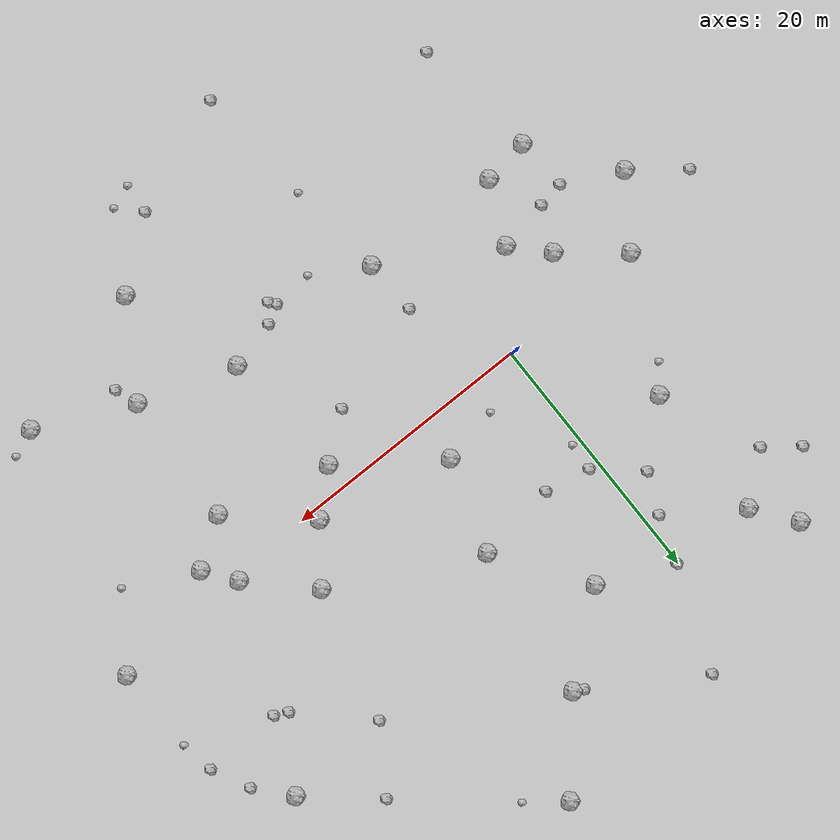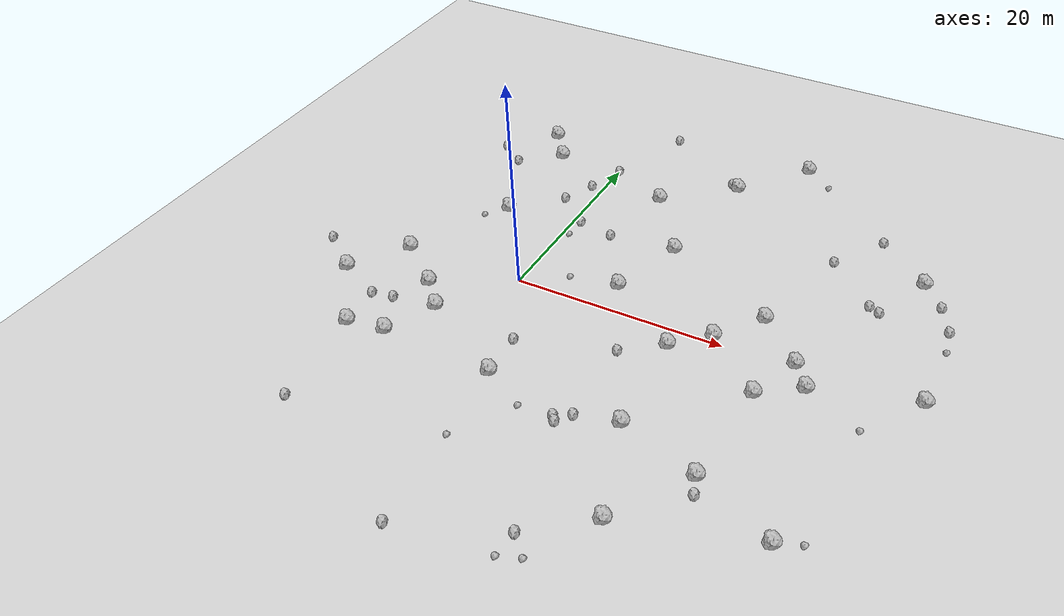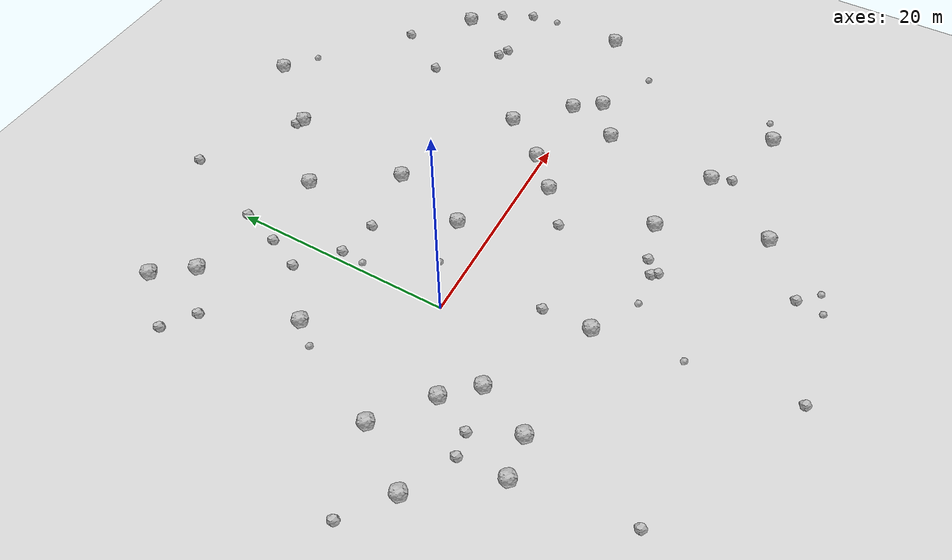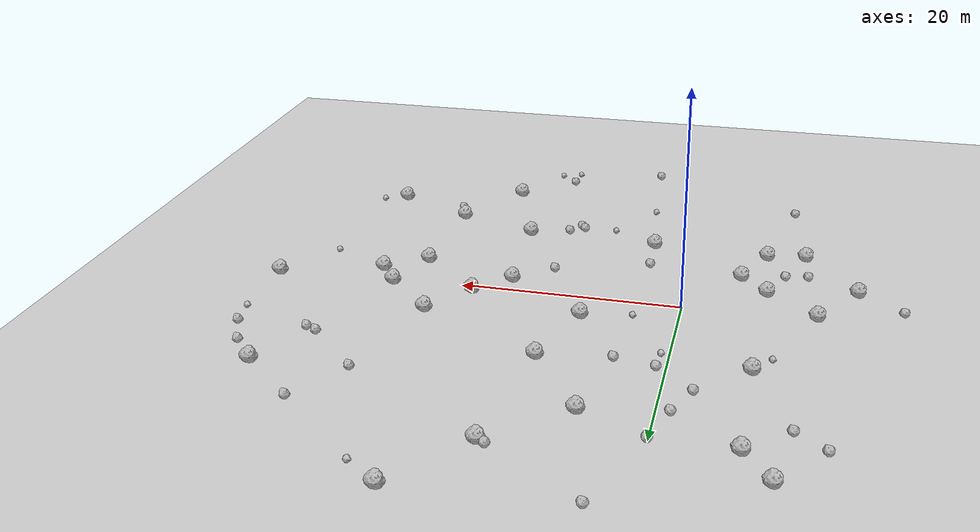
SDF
<sdf version="1.6">
 <world name="default">
  <include><uri>model://custom_ground</uri></include>
  <include><uri>model://sun</uri></include>
  <model name="rock1_0_0">
   <include><uri>model://rock1</uri><pose>-10.388747904983164 -11.75803176053617 0.5 0 0 0</pose></include>
  </model>
  <model name="rock1_0_1">
   <include><uri>model://rock1</uri><pose>26.428262382038966 0.5289827908445481 0.5 0 0 0</pose></include>
  </model>
  <model name="rock1_0_2">
   <include><uri>model://rock1</uri><pose>-4.687512336274619 -6.57455889378927 0.5 0 0 0</pose></include>
  </model>
  <model name="rock1_0_3">
   <include><uri>model://rock1</uri><pose>-15.140202449116567 -5.4696459528496 0.5 0 0 0</pose></include>
  </model>
  <model name="rock1_0_4">
   <include><uri>model://rock1</uri><pose>17.396998926052014 28.756112341361252 0.5 0 0 0</pose></include>
  </model>
  <model name="rock1_0_5">
   <include><uri>model://rock1</uri><pose>-6.800267446037278 -11.25413442466208 0.5 0 0 0</pose></include>
  </model>
  <model name="rock1_0_6">
   <include><uri>model://rock1</uri><pose>12.133424612152957 22.48349167656078 0.5 0 0 0</pose></include>
  </model>
  <model name="rock1_0_7">
   <include><uri>model://rock1</uri><pose>19.779112310787475 -21.36658829141027 0.5 0 0 0</pose></include>
  </model>
  <model name="rock1_0_8">
   <include><uri>model://rock1</uri><pose>10.686955683903506 10.445155333498334 0.5 0 0 0</pose></include>
  </model>
  <model name="rock1_0_9">
   <include><uri>model://rock1</uri><pose>-8.994138159872989 23.180514755637425 0.5 0 0 0</pose></include>
  </model>
  <model name="rock1_0_10">
   <include><uri>model://rock1</uri><pose>-6.607544439469423 19.97345108370984 0.5 0 0 0</pose></include>
  </model>
  <model name="rock1_0_11">
   <include><uri>model://rock1</uri><pose>4.04742348514845 -11.689524831275875 0.5 0 0 0</pose></include>
  </model>
  <model name="rock1_0_12">
   <include><uri>model://rock1</uri><pose>24.098524116641457 -14.523782246956635 0.5 0 0 0</pose></include>
  </model>
  <model name="rock1_0_13">
   <include><uri>model://rock1</uri><pose>33.1311247647336 15.71346973149489 0.5 0 0 0</pose></include>
  </model>
  <model name="rock1_0_14">
   <include><uri>model://rock1</uri><pose>-7.139792688241265 -3.9867166718749445 0.5 0 0 0</pose></include>
  </model>
  <model name="rock1_0_15">
   <include><uri>model://rock1</uri><pose>28.18695917645357 -1.8500782469272856 0.5 0 0 0</pose></include>
  </model>
  <model name="rock1_0_16">
   <include><uri>model://rock1</uri><pose>31.543551742745784 -17.95582542207713 0.5 0 0 0</pose></include>
  </model>
  <model name="rock1_0_17">
   <include><uri>model://rock1</uri><pose>22.01776538162138 4.846589527766703 0.5 0 0 0</pose></include>
  </model>
  <model name="rock1_0_18">
   <include><uri>model://rock1</uri><pose>5.881049681019178 17.33071280459115 0.5 0 0 0</pose></include>
  </model>
  <model name="rock1_0_19">
   <include><uri>model://rock1</uri><pose>-6.68777649148579 9.248225328289983 0.5 0 0 0</pose></include>
  </model>
  <model name="rock1_0_20">
   <include><uri>model://rock1</uri><pose>24.576468419778337 -4.298992718839838 0.5 0 0 0</pose></include>
  </model>
  <model name="rock1_0_21">
   <include><uri>model://rock1</uri><pose>-11.637312554168934 -0.3849603965866635 0.5 0 0 0</pose></include>
  </model>
  <model name="rock1_0_22">
   <include><uri>model://rock1</uri><pose>8.443942278029017 3.235490830580787 0.5 0 0 0</pose></include>
  </model>
  <model name="rock1_0_23">
   <include><uri>model://rock1</uri><pose>16.538188400855873 -12.082678243395975 0.5 0 0 0</pose></include>
  </model>
  <model name="rock1_0_24">
   <include><uri>model://rock1</uri><pose>15.842022060089825 -2.065789670940351 0.5 0 0 0</pose></include>
  </model>
  <model name="rock1_0_25">
   <include><uri>model://rock1</uri><pose>18.894740405846896 0.7224898964655075 0.5 0 0 0</pose></include>
  </model>
  <model name="rock1_0_26">
   <include><uri>model://rock1</uri><pose>37.360156037908986 0.8362163637808209 0.5 0 0 0</pose></include>
  </model>
  <model name="rock2_0_0">
   <include><uri>model://rock2</uri><pose>-2.48335766794899 13.176496202204618 0.3 0 0 0</pose></include>
  </model>
  <model name="rock2_0_1">
   <include><uri>model://rock2</uri><pose>-9.135345824955364 -21.549251496260435 0.3 0 0 0</pose></include>
  </model>
  <model name="rock2_0_2">
   <include><uri>model://rock2</uri><pose>27.968049566296955 20.125343193100747 0.3 0 0 0</pose></include>
  </model>
  <model name="rock2_0_3">
   <include><uri>model://rock2</uri><pose>11.753470882497762 -14.318229908479928 0.3 0 0 0</pose></include>
  </model>
  <model name="rock2_0_4">
   <include><uri>model://rock2</uri><pose>11.352432242472904 22.917475623809175 0.3 0 0 0</pose></include>
  </model>
  <model name="rock2_0_5">
   <include><uri>model://rock2</uri><pose>35.38269467032252 13.166544181129787 0.3 0 0 0</pose></include>
  </model>
  <model name="rock2_0_6">
   <include><uri>model://rock2</uri><pose>24.736947955771136 15.2258606241191 0.3 0 0 0</pose></include>
  </model>
  <model name="rock2_0_7">
   <include><uri>model://rock2</uri><pose>24.753173906994853 -16.316530106395852 0.3 0 0 0</pose></include>
  </model>
  <model name="rock2_0_8">
   <include><uri>model://rock2</uri><pose>36.84175377823139 10.223183091930416 0.3 0 0 0</pose></include>
  </model>
  <model name="rock2_0_9">
   <include><uri>model://rock2</uri><pose>5.724149485111187 -28.804782287077163 0.3 0 0 0</pose></include>
  </model>
  <model name="rock2_0_10">
   <include><uri>model://rock2</uri><pose>3.1752069843136894 28.000404603255916 0.3 0 0 0</pose></include>
  </model>
  <model name="rock2_0_11">
   <include><uri>model://rock2</uri><pose>-10.735102321734153 -7.642418152059243 0.3 0 0 0</pose></include>
  </model>
  <model name="rock2_0_12">
   <include><uri>model://rock2</uri><pose>4.3743250312621385 9.626996588856635 0.3 0 0 0</pose></include>
  </model>
  <model name="rock2_0_13">
   <include><uri>model://rock2</uri><pose>0.8054396402788342 10.3237151058242 0.3 0 0 0</pose></include>
  </model>
  <model name="rock2_0_14">
   <include><uri>model://rock2</uri><pose>0.09546570496425844 19.920204071222628 0.3 0 0 0</pose></include>
  </model>
  <model name="rock2_0_15">
   <include><uri>model://rock2</uri><pose>12.757498383344377 -13.031466540398664 0.3 0 0 0</pose></include>
  </model>
  <model name="rock2_0_16">
   <include><uri>model://rock2</uri><pose>-12.719772686165827 18.929981084769402 0.3 0 0 0</pose></include>
  </model>
  <model name="rock2_0_17">
   <include><uri>model://rock2</uri><pose>14.738109005402379 -25.3343123557817 0.3 0 0 0</pose></include>
  </model>
  <model name="rock2_0_18">
   <include><uri>model://rock2</uri><pose>30.657429251631285 10.023932910604763 0.3 0 0 0</pose></include>
  </model>
  <model name="rock2_0_19">
   <include><uri>model://rock2</uri><pose>29.62411639434665 10.526866022787942 0.3 0 0 0</pose></include>
  </model>
  <model name="rock2_0_20">
   <include><uri>model://rock2</uri><pose>12.412380838051163 -4.691962191002258 0.3 0 0 0</pose></include>
  </model>
  <model name="rock2_0_21">
   <include><uri>model://rock2</uri><pose>-8.691865414639423 -7.288307543662775 0.3 0 0 0</pose></include>
  </model>
  <model name="rock2_0_22">
   <include><uri>model://rock2</uri><pose>-10.188977615335926 17.019610160233228 0.3 0 0 0</pose></include>
  </model>
  <model name="rock2_0_23">
   <include><uri>model://rock2</uri><pose>3.844380535396617 -7.379986018884441 0.3 0 0 0</pose></include>
  </model>
  <model name="rock2_0_24">
   <include><uri>model://rock2</uri><pose>-19.02646104528288 -2.4821767406026076 0.3 0 0 0</pose></include>
  </model>
  <model name="rock2_0_25">
   <include><uri>model://rock2</uri><pose>-1.1210828850607086 16.24775452536545 0.3 0 0 0</pose></include>
  </model>
  <model name="rock2_0_26">
   <include><uri>model://rock2</uri><pose>11.35732054342746 -13.839691430678908 0.3 0 0 0</pose></include>
  </model>
  <model name="rock3_0_0">
   <include><uri>model://rock3</uri><pose>33.60692320551017 -4.51128651509725 0.2 0 0 0</pose></include>
  </model>
  <model name="rock3_0_1">
   <include><uri>model://rock3</uri><pose>33.637654086803465 -17.092726412005575 0.2 0 0 0</pose></include>
  </model>
  <model name="rock3_0_2">
   <include><uri>model://rock3</uri><pose>20.22570758149677 26.603557730200087 0.2 0 0 0</pose></include>
  </model>
  <model name="rock3_0_3">
   <include><uri>model://rock3</uri><pose>8.199370116060006 -14.085860900460967 0.2 0 0 0</pose></include>
  </model>
  <model name="rock3_0_4">
   <include><uri>model://rock3</uri><pose>37.276457188791476 7.553417459723171 0.2 0 0 0</pose></include>
  </model>
  <model name="rock3_0_5">
   <include><uri>model://rock3</uri><pose>14.521401971007997 -27.72829222927363 0.2 0 0 0</pose></include>
  </model>
  <model name="rock3_0_6">
   <include><uri>model://rock3</uri><pose>16.37912918818209 -27.043649828894427 0.2 0 0 0</pose></include>
  </model>
  <model name="rock3_0_7">
   <include><uri>model://rock3</uri><pose>4.90610303643567 -19.358584689670344 0.2 0 0 0</pose></include>
  </model>
  <model name="rock3_0_8">
   <include><uri>model://rock3</uri><pose>-8.272364650537378 7.262428727839854 0.2 0 0 0</pose></include>
  </model>
  <model name="rock3_0_9">
   <include><uri>model://rock3</uri><pose>3.9114331092266283 2.3941958361750295 0.2 0 0 0</pose></include>
  </model>
  <model name="rock3_0_10">
   <include><uri>model://rock3</uri><pose>0.6435302323815542 8.122182967236974 0.2 0 0 0</pose></include>
  </model>
 </world>
</sdf>
